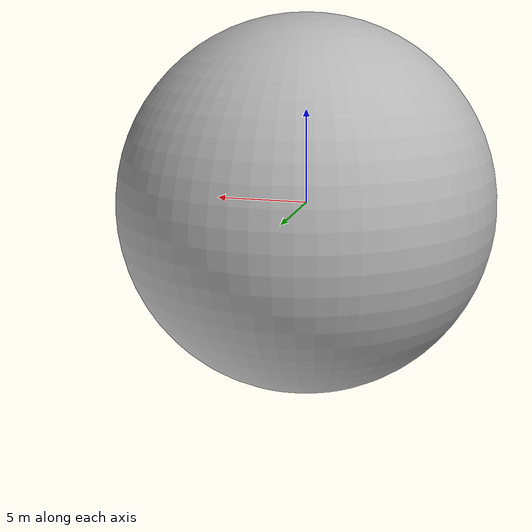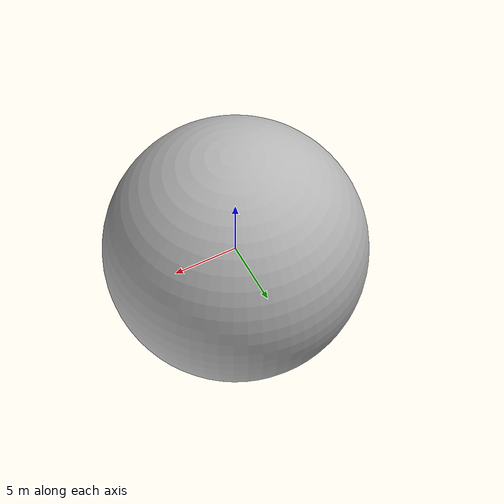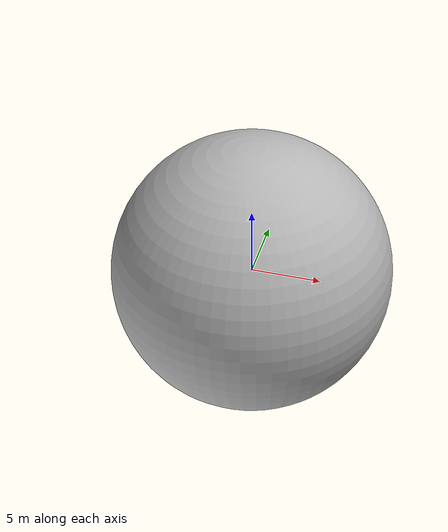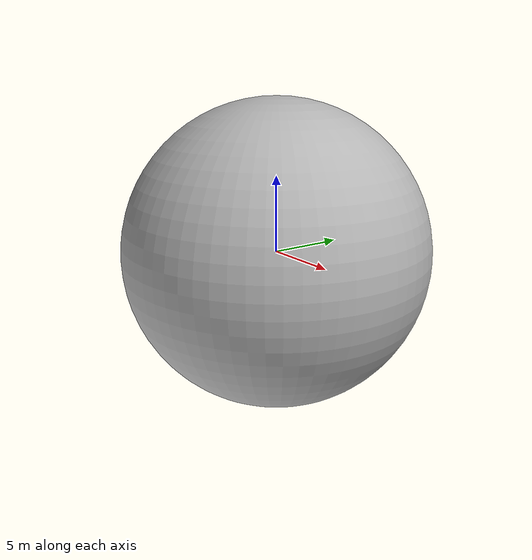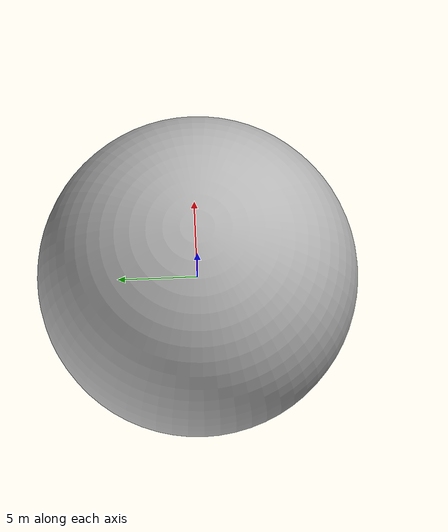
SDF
<?xml version="1.0" ?>
<sdf version="1.4">
  <!-- We use a custom world for the rrbot so that the camera angle is launched correctly -->

  <world name="default">
    <!-- Required gz-sim systems: without these, the world simulates physics
         but nothing steps/publishes sensor data (lidar, camera, IMU) and
         GUI-side entity spawning/deletion won't work. -->
    <plugin filename="gz-sim-physics-system" name="gz::sim::systems::Physics">
    </plugin>
    <plugin filename="gz-sim-user-commands-system" name="gz::sim::systems::UserCommands">
    </plugin>
    <plugin filename="gz-sim-scene-broadcaster-system" name="gz::sim::systems::SceneBroadcaster">
    </plugin>
    <plugin filename="gz-sim-sensors-system" name="gz::sim::systems::Sensors">
      <render_engine>ogre2</render_engine>
    </plugin>
    <plugin filename="gz-sim-imu-system" name="gz::sim::systems::Imu">
    </plugin>
     <scene>
      <ambient>0.8 0.8 0.8 1.0</ambient>
      <background>0.5 0.5 0.5</background>
      <grid>false</grid>
    </scene>

    <model name="ground_plane">
      <static>true</static>
      <link name="link">
        <collision name="collision">
          <geometry>
            <plane>
              <normal>0 0 1</normal>
              <size>100 100</size>
            </plane>
          </geometry>
        </collision>
      </link>
    </model>

    <include>
      <uri>model://conde_world</uri>
      <pose>0.1 -0.5 0 0 0 3.141592</pose>
    </include>

    <include>
      <uri>model://background</uri>
      <pose>0 0 0 0 0 0</pose>
    </include>

    <light name='user_point_light_1' type='point'>
      <pose>0.0 0.0 2.0 0 0 0</pose>
      <diffuse>0.5 0.5 0.5 1</diffuse>
      <specular>0.1 0.1 0.1 1</specular>
      <attenuation>
        <range>100</range>
        <constant>0.05</constant>
        <linear>0.0</linear>
        <quadratic>0.001</quadratic>
      </attenuation>
      <cast_shadows>0</cast_shadows>
      <direction>0 0 -1</direction>
    </light>

  </world>
</sdf>

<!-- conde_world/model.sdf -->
<sdf version='1.4'>
    <model name='conde_world'>
      <static>1</static>
      <link name='link_ground'>
        <collision name='collision'>
          <geometry>
            <plane>
              <normal>0 0 1</normal>
              <size>1.74 4.17</size>
            </plane>
          </geometry>
          <surface>
            <friction>
              <ode>
                <mu>100</mu>
                <mu2>50</mu2>
              </ode>
            </friction>
            <bounce/>
            <contact>
              <ode/>
            </contact>
          </surface>
          <max_contacts>10</max_contacts>
        </collision>
        <visual name='visual_ground'>
          <cast_shadows>0</cast_shadows>
	  <pose>0 0 .005 0 0 0</pose>
          <geometry>
            <plane>
              <normal>0 0 1</normal>
              <size>1.74 4.17</size>
            </plane>
          </geometry>
          <material>
            <ambient>1 1 1 1</ambient>
            <diffuse>1 1 1 1</diffuse>
            <specular>0.03 0.03 0.03 1</specular>
            <emissive>0.9 0.9 0.9 1</emissive>
            <pbr>
              <metal>
                <albedo_map>model://conde_world/materials/textures/floor.png</albedo_map>
                <emissive_map>model://conde_world/materials/textures/floor.png</emissive_map>
                <metalness>0.0</metalness>
                <roughness>1.0</roughness>
              </metal>
            </pbr>
          </material>
        </visual>
        <velocity_decay>
          <linear>0</linear>
          <angular>0</angular>
        </velocity_decay>
        <self_collide>0</self_collide>
        <kinematic>0</kinematic>
        <gravity>1</gravity>
      </link>
      <pose>0 0 0 0 -0 0</pose>
    </model>
</sdf>

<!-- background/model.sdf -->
<sdf version='1.6'>
  <model name='background'>
    <link name='link_1'>
         <visual name='visual'>
        <pose frame=''>0 0 0 0 -0 0</pose>
        <geometry>
          <mesh>
            <uri>model://background/meshes/sphere.dae</uri>
            <scale>0.02 0.02 0.02</scale>
          </mesh>
        </geometry>
        <cast_shadows>0</cast_shadows>
        <transparency>0</transparency>
      </visual>
    </link>

    <static>1</static>
    <allow_auto_disable>1</allow_auto_disable>
  </model>
</sdf>
